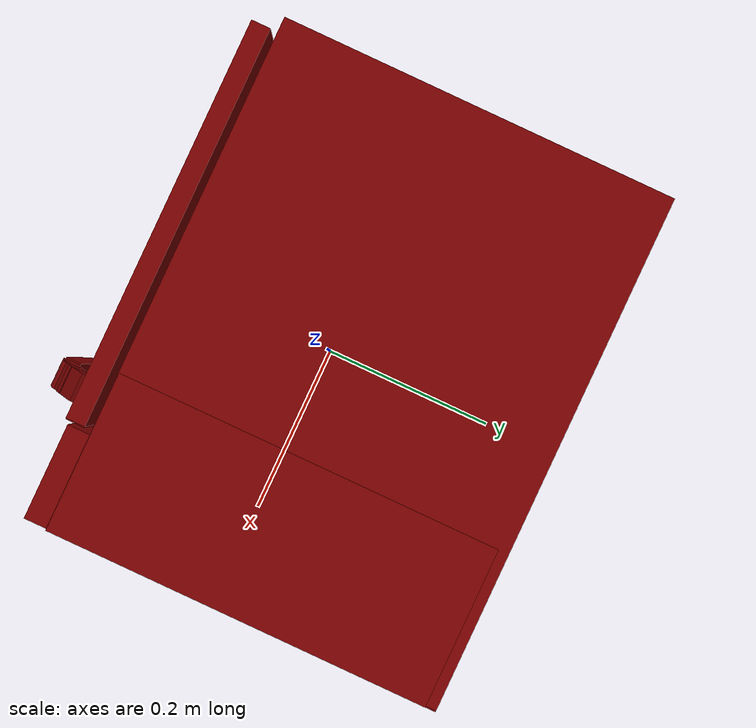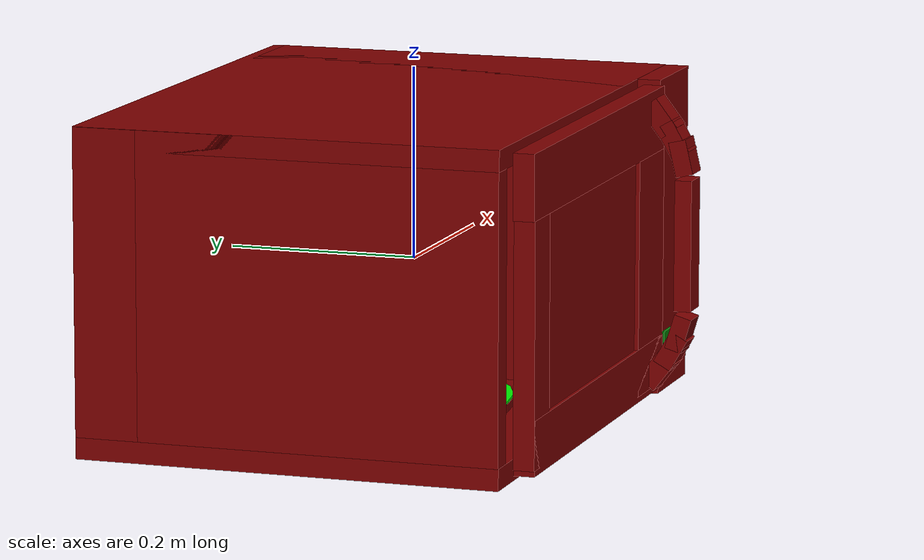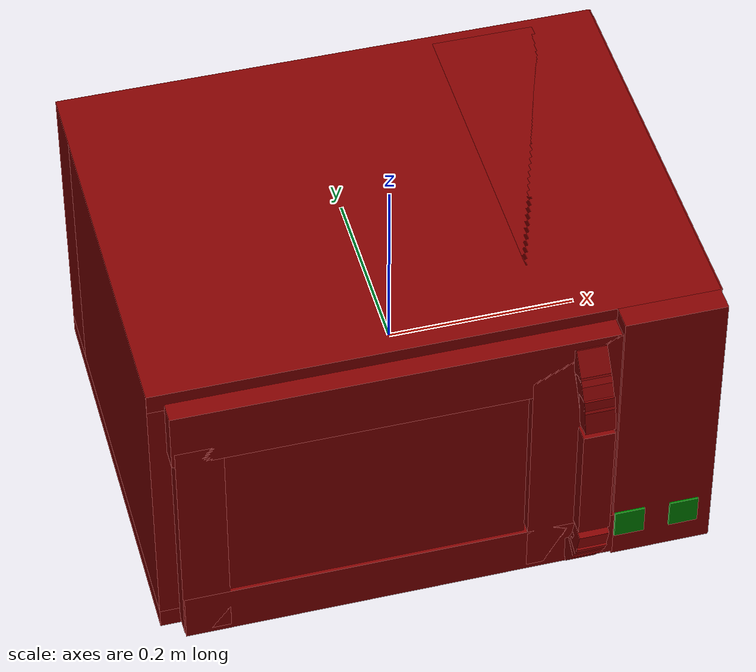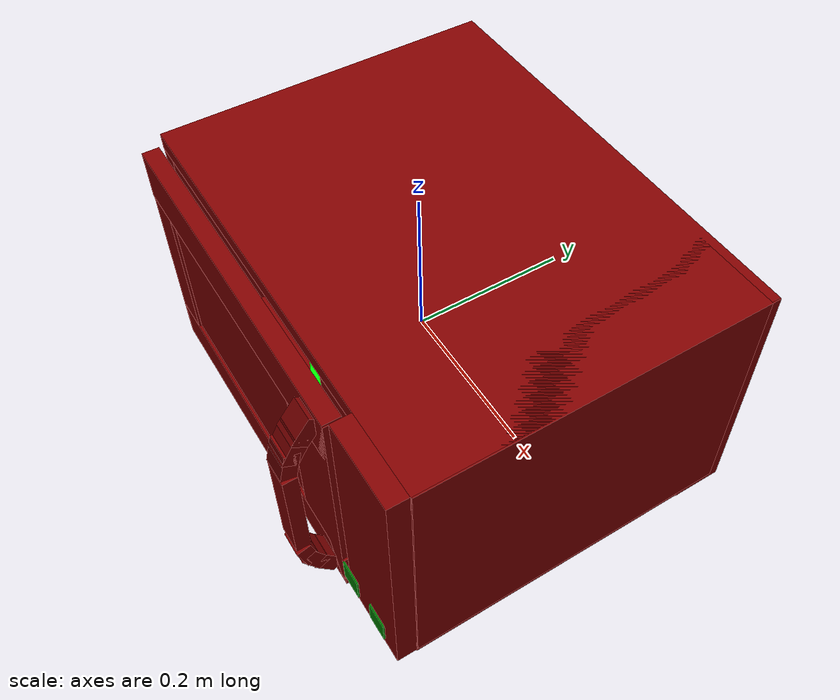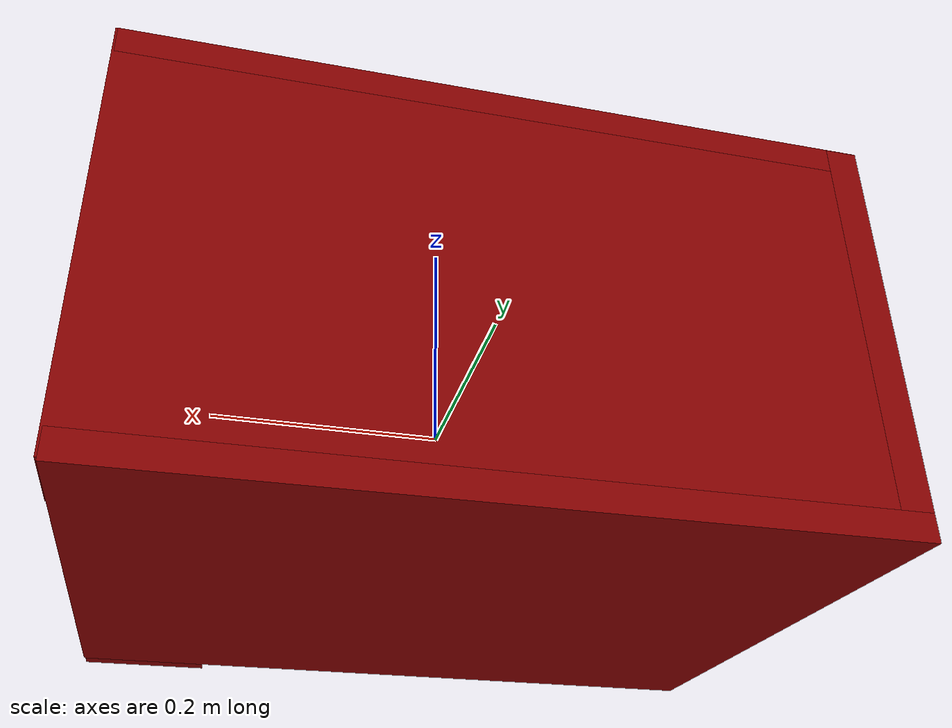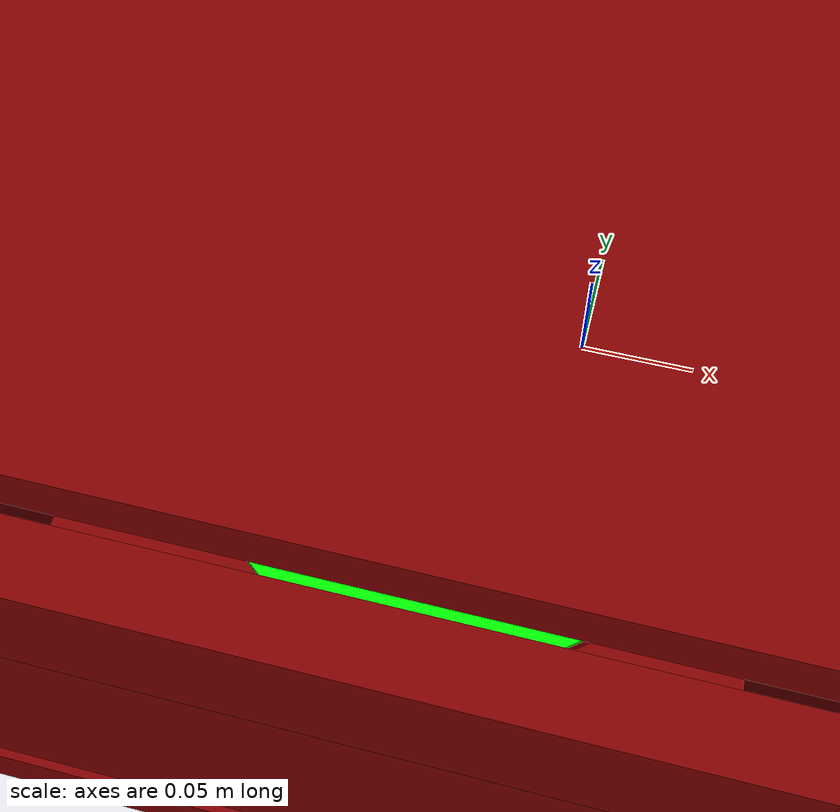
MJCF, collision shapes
<?xml version='1.0' encoding='UTF-8'?>
<mujoco model="model">
  <option timestep="0.002" gravity="0.0 0.0 -9.81"/>
  <compiler angle="radian"/>
  <asset>
    <mesh file="visuals/door.obj" name="door_vis"/>
    <mesh file="visuals/door_Clear.obj" name="door_Clear_vis"/>
    <mesh file="visuals/Body001.obj" name="Body001_vis"/>
    <mesh file="visuals/Disc001.obj" name="Disc001_vis"/>
    <texture file="visuals/T_BC001.png" name="Body001_material" type="2d"/>
    <material name="Body001_material" rgba="1 1 1 1.0" texture="Body001_material" shininess="0.1" specular="5"/>
    <texture file="visuals/T_BC001.png" name="door_material" type="2d"/>
    <material name="door_material" rgba="1 1 1 1.0" texture="door_material" shininess="0.1" specular="5"/>
    <material name="door_Clear_material" rgba="0.09514838457107544 0.09514838457107544 0.09514838457107544 0.800000011920929" shininess="0.5" specular="0.3103448502657381"/>
    <texture file="visuals/T_BC001.png" name="Disc001_material" type="2d"/>
    <material name="Disc001_material" rgba="1 1 1 1.0" texture="Disc001_material" shininess="0.1" specular="5"/>
  </asset>
  <default>
    <default class="visual">
      <geom conaffinity="0" contype="0" group="1" type="mesh"/>
    </default>
    <default class="collision">
      <geom group="0" rgba="0.5 0 0 0.5"/>
    </default>
    <default class="spawn">
      <geom group="0" rgba="1 1 1 0.5" contype="0" conaffinity="0"/>
      <site group="0" rgba="1 1 1 0.5"/>
    </default>
    <default class="region">
      <geom group="1" conaffinity="0" contype="0" rgba="0 1 0 0"/>
    </default>
  </default>
  <worldbody>
    <body>
      <body name="object">
        <geom class="collision" type="cylinder" pos="-0.060759879648685455 0.021106692031025887 -0.1328725963830948" size="0.14255502820014954 0.0014981509884819388" quat="1.0 0.0 0.0 0.0" name="tray" rgba="0 1 0 0.5"/>
        <geom class="collision" type="box" pos="0.25932788848876953 -0.21656057238578796 -0.11676647514104843" size="0.015629081055521965 0.0010499833151698112 0.01617376133799553" quat="1.0 0.0 0.0 0.0" name="stop_button" rgba="0.0 0.5 0 0.5"/>
        <geom class="collision" type="box" pos="0.20051923394203186 -0.21656057238578796 -0.11640120297670364" size="0.016063643619418144 0.0010977096389979124 0.016673916950821877" quat="1.0 0.0 0.0 0.0" name="start_button" rgba="0.0 0.5 0 0.5"/>
        <geom mesh="Body001_vis" type="mesh" solimp="0.998 0.998 0.001" solref="0.001 1" friction="0.95 0.3 0.1" class="visual" material="Body001_material"/>
        <geom class="collision" type="box" pos="0.2377501279115677 0.018529720604419708 0.001223099185153842" size="0.05364568904042244 0.22963473200798035 0.16832594573497772" quat="1.0 0.0 0.0 0.0"/>
        <geom class="collision" type="box" pos="-8.701378828845918e-05 0.22681181132793427 0.000955226190853864" size="0.29336556792259216 0.03332466259598732 0.16824114322662354" quat="1.0 0.0 0.0 0.0"/>
        <geom class="collision" type="box" pos="0.2033662348985672 0.03149781748652458 0.004265929572284222" size="0.09008629620075226 0.2168685495853424 0.16528382897377014" quat="1.0 0.0 0.0 0.0"/>
        <geom class="collision" type="box" pos="-0.0008076358353719115 0.037123698741197586 -0.158383309841156" size="0.29264557361602783 0.22301435470581055 0.011166481301188469" quat="1.0 0.0 0.0 0.0"/>
        <geom class="collision" type="box" pos="-0.28042083978652954 0.037383731454610825 0.0005206208443269134" size="0.013030908070504665 0.2227540761232376 0.1688016802072525" quat="1.0 0.0 0.0 0.0"/>
        <geom class="collision" type="box" pos="-0.000807647651527077 0.037123698741197586 0.15857042372226715" size="0.29264408349990845 0.22301284968852997 0.010979358106851578" quat="1.0 0.0 0.0 0.0"/>
        <body name="door">
          <joint axis="0.0 0.0 1.0" pos="-0.27479857206344604 -0.20117312669754028 0.0027948173228651285" limited="true" name="microjoint" range="-1.5707963267948966 0.0" type="hinge" damping="1" frictionloss="1" armature=".01" stiffness="0.05"/>
          <geom mesh="door_vis" type="mesh" solimp="0.998 0.998 0.001" solref="0.001 1" friction="0.95 0.3 0.1" class="visual" material="door_material"/>
          <geom class="collision" type="box" pos="0.1460995078086853 -0.2519758641719818 0.0038811680860817432" size="0.016500357538461685 0.009066409431397915 0.06949946284294128" quat="1.0 0.0 0.0 0.0" name="door_handle_main"/>
          <geom class="collision" type="box" pos="0.1467444747686386 -0.23927158117294312 -0.10896866023540497" size="0.015760447829961777 0.018705299124121666 0.010145241394639015" quat="0.864357054233551 -0.5028786063194275 6.948561122044339e-07 7.785965294715425e-08"/>
          <geom class="collision" type="box" pos="-0.24951070547103882 -0.20567037165164948 -0.018414851278066635" size="0.02450057677924633 0.010938514955341816 0.1332176774740219" quat="1.0 0.0 0.0 0.0"/>
          <geom class="collision" type="box" pos="0.13522017002105713 -0.20567040145397186 0.005505544599145651" size="0.04553541541099548 0.010938532650470734 0.15713804960250854" quat="1.0 0.0 0.0 0.0"/>
          <geom class="collision" type="box" pos="-0.04459337145090103 -0.20567037165164948 -0.12936659157276154" size="0.2279670536518097 0.010938575491309166 0.028038175776600838" quat="1.0 0.0 0.0 0.0"/>
          <geom class="collision" type="box" pos="0.1467444747686386 -0.22427043318748474 -0.1308474987745285" size="0.015760447829961777 0.018705304712057114 0.01090038288384676" quat="0.8963797092437744 -0.44328704476356506 3.6028129102305684e-07 1.4993763386428327e-07"/>
          <geom class="collision" type="box" pos="0.1467444747686386 -0.24735455214977264 -0.09000664949417114" size="0.015760447829961777 0.018705302849411964 0.0093734385445714" quat="0.8013164401054382 -0.5982407331466675 6.814299808866053e-07 1.5665389696550847e-07"/>
          <geom class="collision" type="box" pos="-0.0489509254693985 -0.20567037165164948 0.13129369914531708" size="0.22841805219650269 0.01093857828527689 0.03351430594921112" quat="1.0 0.0 0.0 0.0" name="door_main"/>
          <geom class="collision" type="box" pos="-0.07153061032295227 -0.20096594095230103 -0.001199199352413416" size="0.15822134912014008 0.01202082633972168 0.11153775453567505" quat="1.0 0.0 0.0 0.0"/>
          <geom class="collision" type="box" pos="0.1467444747686386 -0.23927158117294312 0.11536557227373123" size="0.015760447829961777 0.018705299124121666 0.010145241394639015" quat="9.661798827664825e-08 -6.952240596547199e-07 -0.5028786063194275 0.864357054233551"/>
          <geom class="collision" type="box" pos="0.1467444747686386 -0.22427043318748474 0.13724441826343536" size="0.015760447829961777 0.018705304712057114 0.010900383815169334" quat="-2.159218439601318e-07 -6.069335540814791e-07 -0.4432871341705322 0.8963796496391296"/>
          <geom class="collision" type="box" pos="0.1467444747686386 -0.24857884645462036 0.09636051952838898" size="0.015760447829961777 0.018705304712057114 0.009373435750603676" quat="9.99178908500653e-08 -7.618554604960082e-07 -0.6223275065422058 0.7827569842338562"/>
          <body name="door_Clear">
            <geom mesh="door_Clear_vis" type="mesh" solimp="0.998 0.998 0.001" solref="0.001 1" friction="0.95 0.3 0.1" class="visual" material="door_Clear_material"/>
            <geom class="collision" type="box" pos="-0.07153061032295227 -0.20096594095230103 -0.001199199352413416" size="0.15822134912014008 0.01202082633972168 0.11153775453567505" quat="1.0 0.0 0.0 0.0"/>
          </body>
        </body>
        <body name="Disc001">
          <joint axis="0.0 0.0 1.0" pos="-0.0595463290810585 0.021286826580762863 -0.11701425909996033" limited="false" name="Disc001_joint" range="0 360" type="hinge" damping="1" frictionloss="1" armature=".01" stiffness="0.05"/>
          <geom mesh="Disc001_vis" type="mesh" solimp="0.998 0.998 0.001" solref="0.001 1" friction="0.95 0.3 0.1" class="visual" material="Disc001_material"/>
          <geom class="collision" type="cylinder" pos="-0.06075989454984665 0.020416980609297752 -0.1388215720653534" size="0.14195062220096588 0.004203101620078087" quat="1.9470718370939721e-07 -1.0 0.0 0.0"/>
        </body>
        <geom class="region" name="reg_int" type="box" pos="-0.07712024077773094 0.004163332283496857 0.003747284412384033" size="0.18249379268288612 0.18201555854082108 0.13612171804904938"/>
        <geom class="region" name="reg_main" type="box" pos="7.450580596923828e-09 0.021763700991868973 0.0" size="0.2944515178203583 0.23937260901927948 0.17054977810382843"/>
      <geom class="region" name="reg_tray" type="cylinder" pos="-0.060759879648685455 0.021106692031025887 0.004247278533410281" size="0.14255502820014954 0.13462172392802313"/></body>
    </body>
  </worldbody>
  <actuator>
    <motor name="microjoint_actuator" joint="microjoint" gear="10"/>
    <motor name="Disc001_joint_actuator" joint="Disc001_joint" gear="10"/>
  </actuator>
</mujoco>
